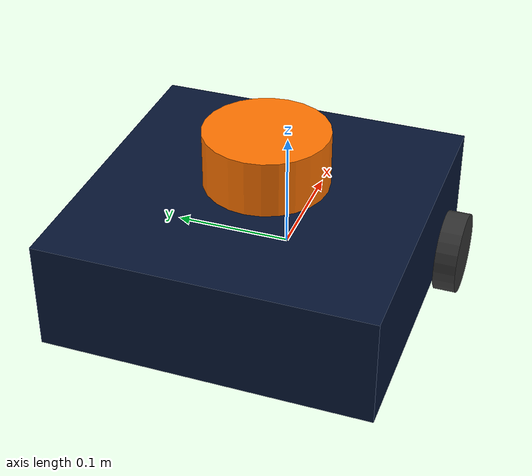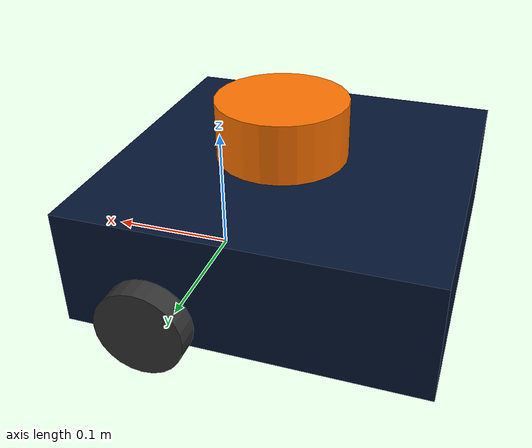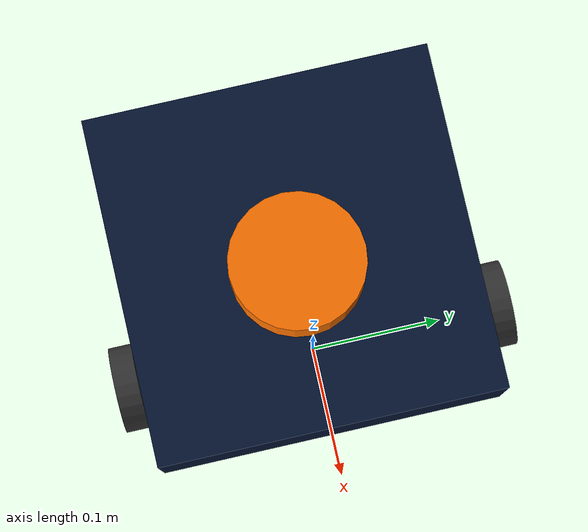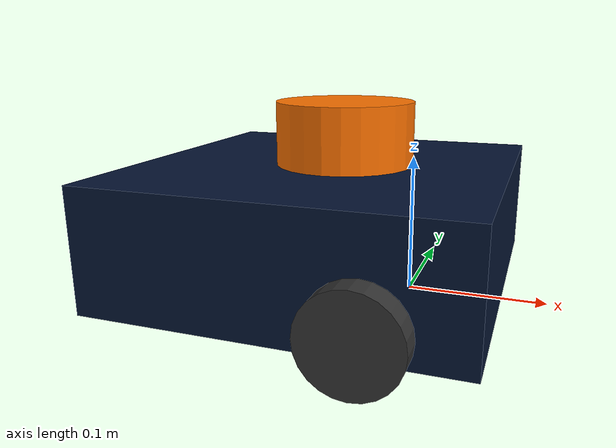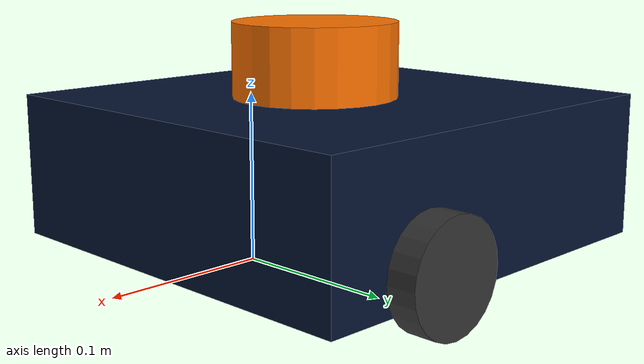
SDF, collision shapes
<?xml version="1.0" ?>
<sdf version="1.8">
  <model name="turtlebot3_waffle">
  <pose>0.0 0.0 0.0 0.0 0.0 0.0</pose>

    <link name="base_footprint"/>

    <link name="base_link">

      <inertial>
        <pose>-0.064 0 0.048 0 0 0</pose>
        <inertia>
          <ixx>4.2111447e-02</ixx>
          <ixy>0</ixy>
          <ixz>0</ixz>
          <iyy>4.2111447e-02</iyy>
          <iyz>0</iyz>
          <izz>7.5254874e-02</izz>
        </inertia>
        <mass>1.3729096e+00</mass>
      </inertial>

      <collision name="base_collision">
        <pose>-0.064 0 0.048 0 0 0</pose>
        <geometry>
          <box>
            <size>0.265 0.265 0.089</size>
          </box>
        </geometry>
      </collision>

      <visual name="base_visual">
        <pose>-0.064 0 0 0 0 0</pose>
        <geometry>
          <mesh>
            <uri>model://turtlebot3_common/meshes/bases/waffle_base.stl</uri>
            <scale>0.001 0.001 0.001</scale>
          </mesh>
        </geometry>
        <material>
          <ambient>0.02 0.05 0.12 1.0</ambient>
          <diffuse>0.02 0.08 0.20 1.0</diffuse>
          <specular>0.1 0.1 0.1 1.0</specular>
        </material>
      </visual>
    </link>

    <link name="imu_link">
      <sensor name="tb3_imu" type="imu">
        <always_on>true</always_on>
        <update_rate>50</update_rate>
        <topic>robot1/imu</topic>
        <imu>
          <angular_velocity>
            <x>
              <noise type="gaussian">
                <mean>0.0</mean>
                <stddev>2e-4</stddev>
              </noise>
            </x>
            <y>
              <noise type="gaussian">
                <mean>0.0</mean>
                <stddev>2e-4</stddev>
              </noise>
            </y>
            <z>
              <noise type="gaussian">
                <mean>0.0</mean>
                <stddev>2e-4</stddev>
              </noise>
            </z>
          </angular_velocity>
          <linear_acceleration>
            <x>
              <noise type="gaussian">
                <mean>0.0</mean>
                <stddev>1.7e-2</stddev>
              </noise>
            </x>
            <y>
              <noise type="gaussian">
                <mean>0.0</mean>
                <stddev>1.7e-2</stddev>
              </noise>
            </y>
            <z>
              <noise type="gaussian">
                <mean>0.0</mean>
                <stddev>1.7e-2</stddev>
              </noise>
            </z>
          </linear_acceleration>
        </imu>
      </sensor>
    </link>

    <link name="base_scan">
      <inertial>
        <pose>-0.052 0 0.111 0 0 0</pose>
        <inertia>
          <ixx>0.001</ixx>
          <ixy>0.000</ixy>
          <ixz>0.000</ixz>
          <iyy>0.001</iyy>
          <iyz>0.000</iyz>
          <izz>0.001</izz>
        </inertia>
        <mass>0.114</mass>
      </inertial>

      <collision name="lidar_sensor_collision">
        <pose>-0.052 0 0.111 0 0 0</pose>
        <geometry>
          <cylinder>
            <radius>0.0508</radius>
            <length>0.055</length>
          </cylinder>
        </geometry>
      </collision>

      <visual name="lidar_sensor_visual">
        <pose>-0.064 0 0.121 0 0 0</pose>
        <geometry>
          <mesh>
            <uri>model://turtlebot3_common/meshes/sensors/lds.stl</uri>
            <scale>0.001 0.001 0.001</scale>
          </mesh>
        </geometry>
        <material>
          <ambient>1.0 0.35 0.0 1.0</ambient>
          <diffuse>1.0 0.45 0.0 1.0</diffuse>
          <specular>0.25 0.20 0.15 1.0</specular>
        </material>
      </visual>

      <sensor name="hls_lfcd_lds" type="gpu_lidar">
        <always_on>true</always_on>
        <visualize>true</visualize>
        <pose>-0.064 0 0.121 0 0 0</pose>
        <update_rate>10</update_rate>
        <topic>robot1/scan</topic>
        <gz_frame_id>robot1/base_scan</gz_frame_id>
        <lidar>
          <scan>
            <horizontal>
              <samples>360</samples>
              <resolution>1.000000</resolution>
              <min_angle>0.000000</min_angle>
              <max_angle>6.280000</max_angle>
            </horizontal>
          </scan>
          <range>
            <min>0.120000</min>
            <max>20.0</max>
            <resolution>0.015000</resolution>
          </range>
          <noise>
            <type>gaussian</type>
            <mean>0.0</mean>
            <stddev>0.01</stddev>
          </noise>
        </lidar>
      </sensor>
    </link>

    <link name="wheel_left_link">

      <inertial>
        <pose>0.0 0.144 0.023 -1.57 0 0</pose>
        <inertia>
          <ixx>1.1175580e-05</ixx>
          <ixy>-4.2369783e-11</ixy>
          <ixz>-5.9381719e-09</ixz>
          <iyy>1.1192413e-05</iyy>
          <iyz>-1.4400107e-11</iyz>
          <izz>2.0712558e-05</izz>
        </inertia>
        <mass>0.1</mass>
      </inertial>

      <collision name="wheel_left_collision">
        <pose>0.0 0.144 0.023 -1.57 0 0</pose>
        <geometry>
          <cylinder>
            <radius>0.033</radius>
            <length>0.018</length>
          </cylinder>
        </geometry>
        <surface>
          <!-- This friction pamareter don't contain reliable data!! -->
          <friction>
            <ode>
              <mu>1.0</mu>
              <mu2>0.5</mu2>
              <fdir1>0 0 0</fdir1>
              <slip1>0.0</slip1>
              <slip2>0.0</slip2>
            </ode>
          </friction>
          <contact>
            <ode>
              <soft_cfm>0</soft_cfm>
              <soft_erp>0.2</soft_erp>
              <kp>1e+5</kp>
              <kd>1</kd>
              <max_vel>0.01</max_vel>
              <min_depth>0.001</min_depth>
            </ode>
          </contact>
        </surface>
      </collision>

      <visual name="wheel_left_visual">
        <pose>0.0 0.144 0.023 0 0 0</pose>
        <geometry>
          <mesh>
            <uri>model://turtlebot3_common/meshes/wheels/left_tire.stl</uri>
            <scale>0.001 0.001 0.001</scale>
          </mesh>
        </geometry>
        <material>
          <ambient>0.2 0.2 0.2 1.0</ambient>
          <diffuse>0.2 0.2 0.2 1.0</diffuse>
        </material>
      </visual>
    </link>

    <link name="wheel_right_link">

      <inertial>
        <pose>0.0 -0.144 0.023 -1.57 0 0</pose>
        <inertia>
          <ixx>1.1175580e-05</ixx>
          <ixy>-4.2369783e-11</ixy>
          <ixz>-5.9381719e-09</ixz>
          <iyy>1.1192413e-05</iyy>
          <iyz>-1.4400107e-11</iyz>
          <izz>2.0712558e-05</izz>
        </inertia>
        <mass>0.1</mass>
      </inertial>

      <collision name="wheel_right_collision">
        <pose>0.0 -0.144 0.023 -1.57 0 0</pose>
        <geometry>
          <cylinder>
            <radius>0.033</radius>
            <length>0.018</length>
          </cylinder>
        </geometry>
        <surface>
          <!-- This friction pamareter don't contain reliable data!! -->
          <friction>
            <ode>
              <mu>1.0</mu>
              <mu2>0.5</mu2>
              <fdir1>0 0 0</fdir1>
              <slip1>0.0</slip1>
              <slip2>0.0</slip2>
            </ode>
          </friction>
          <contact>
            <ode>
              <soft_cfm>0</soft_cfm>
              <soft_erp>0.2</soft_erp>
              <kp>1e+5</kp>
              <kd>1</kd>
              <max_vel>0.01</max_vel>
              <min_depth>0.001</min_depth>
            </ode>
          </contact>
        </surface>
      </collision>

      <visual name="wheel_right_visual">
        <pose>0.0 -0.144 0.023 0 0 0</pose>
        <geometry>
          <mesh>
            <uri>model://turtlebot3_common/meshes/wheels/right_tire.stl</uri>
            <scale>0.001 0.001 0.001</scale>
          </mesh>
        </geometry>
        <material>
          <ambient>0.2 0.2 0.2 1.0</ambient>
          <diffuse>0.2 0.2 0.2 1.0</diffuse>
        </material>
      </visual>
    </link>

    <link name='caster_back_right_link'>
      <pose>-0.177 -0.064 -0.005 -1.57 0 0</pose>
      <inertial>
        <mass>0.001</mass>
        <inertia>
          <ixx>0.00001</ixx>
          <ixy>0.000</ixy>
          <ixz>0.000</ixz>
          <iyy>0.00001</iyy>
          <iyz>0.000</iyz>
          <izz>0.00001</izz>
        </inertia>
      </inertial>
      <collision name='collision'>
        <geometry>
          <sphere>
            <radius>0.005000</radius>
          </sphere>
        </geometry>
        <surface>
          <friction>
            <ode>
              <mu>0.0</mu>
              <mu2>0.0</mu2>
              <fdir1>0 0 0</fdir1>
              <slip1>0.0</slip1>
              <slip2>0.0</slip2>
            </ode>
          </friction>
          <contact>
            <ode>
              <soft_cfm>0</soft_cfm>
              <soft_erp>0.2</soft_erp>
              <kp>1e+5</kp>
              <kd>1</kd>
              <max_vel>0.01</max_vel>
              <min_depth>0.001</min_depth>
            </ode>
          </contact>
        </surface>
      </collision>
    </link>

    <link name='caster_back_left_link'>
      <pose>-0.177 0.064 -0.005 -1.57 0 0</pose>
      <inertial>
        <mass>0.001</mass>
        <inertia>
          <ixx>0.00001</ixx>
          <ixy>0.000</ixy>
          <ixz>0.000</ixz>
          <iyy>0.00001</iyy>
          <iyz>0.000</iyz>
          <izz>0.00001</izz>
        </inertia>
      </inertial>
      <collision name='collision'>
        <geometry>
          <sphere>
            <radius>0.005000</radius>
          </sphere>
        </geometry>
        <surface>
          <friction>
            <ode>
              <mu>0.0</mu>
              <mu2>0.0</mu2>
              <fdir1>0 0 0</fdir1>
              <slip1>0.0</slip1>
              <slip2>0.0</slip2>
            </ode>
          </friction>
          <contact>
            <ode>
              <soft_cfm>0</soft_cfm>
              <soft_erp>0.2</soft_erp>
              <kp>1e+5</kp>
              <kd>1</kd>
              <max_vel>0.01</max_vel>
              <min_depth>0.001</min_depth>
            </ode>
          </contact>
        </surface>
      </collision>
    </link>

    <link name="camera_link"/>

    <link name="camera_rgb_frame">
      <inertial>
        <pose>0.069 -0.047 0.107 0 0 0</pose>
        <inertia>
          <ixx>0.001</ixx>
          <ixy>0.000</ixy>
          <ixz>0.000</ixz>
          <iyy>0.001</iyy>
          <iyz>0.000</iyz>
          <izz>0.001</izz>
        </inertia>
        <mass>0.035</mass>
      </inertial>

      <pose>0.069 -0.047 0.107 0 0 0</pose>
      <sensor name="camera" type="camera">
        <always_on>true</always_on>
        <visualize>true</visualize>
        <update_rate>30</update_rate>
        <topic>camera/image_raw</topic>
        <gz_frame_id>camera_rgb_frame</gz_frame_id>
        <camera name="intel_realsense_r200">
          <camera_info_topic>camera/camera_info</camera_info_topic>
          <horizontal_fov>1.02974</horizontal_fov>
          <image>
            <width>1920</width>
            <height>1080</height>
            <format>R8G8B8</format>
          </image>
          <clip>
            <near>0.02</near>
            <far>300</far>
          </clip>
          <noise>
            <type>gaussian</type>
            <mean>0.0</mean>
            <stddev>0.007</stddev>
          </noise>
        </camera>
      </sensor>
    </link>

    <joint name="base_joint" type="fixed">
      <parent>base_footprint</parent>
      <child>base_link</child>
      <pose>0.0 0.0 0.010 0 0 0</pose>
    </joint>

    <joint name="wheel_left_joint" type="revolute">
      <parent>base_link</parent>
      <child>wheel_left_link</child>
      <pose>0.0 0.144 0.023 -1.57 0 0</pose>
      <axis>
        <xyz>0 0 1</xyz>
        <limit>
          <effort>20</effort>
        </limit>
      </axis>
    </joint>

    <joint name="wheel_right_joint" type="revolute">
      <parent>base_link</parent>
      <child>wheel_right_link</child>
      <pose>0.0 -0.144 0.023 -1.57 0 0</pose>
      <axis>
        <xyz>0 0 1</xyz>
        <limit>
          <effort>20</effort>
        </limit>
      </axis>
    </joint>

    <joint name='caster_back_right_joint' type='ball'>
      <parent>base_link</parent>
      <child>caster_back_right_link</child>
    </joint>

    <joint name='caster_back_left_joint' type='ball'>
      <parent>base_link</parent>
      <child>caster_back_left_link</child>
    </joint>

    <joint name="imu_joint" type="fixed">
      <parent>base_link</parent>
      <child>imu_link</child>
      <pose>-0.032 0 0.068 0 0 0</pose>
      <axis>
        <xyz>0 0 1</xyz>
      </axis>
    </joint>

    <joint name="lidar_joint" type="fixed">
      <parent>base_link</parent>
      <child>base_scan</child>
      <pose>-0.064 0 0.121 0 0 0</pose>
      <axis>
        <xyz>0 0 1</xyz>
      </axis>
    </joint>

    <joint name="camera_joint" type="fixed">
      <parent>base_link</parent>
      <child>camera_link</child>
      <pose>0.064 -0.065 0.094 0 0 0</pose>
      <axis>
        <xyz>0 0 1</xyz>
      </axis>
    </joint>

    <joint name="camera_rgb_joint" type="fixed">
      <parent>camera_link</parent>
      <child>camera_rgb_frame</child>
      <pose>0.005 0.018 0.013 0 0 0</pose>
      <axis>
        <xyz>0 0 1</xyz>
      </axis>
    </joint>

    <plugin filename="gz-sim-diff-drive-system" name="gz::sim::systems::DiffDrive">

      <!-- wheels -->
      <left_joint>wheel_left_joint</left_joint>
      <right_joint>wheel_right_joint</right_joint>

      <!-- Match the calibrated generic model to reduce yaw over-rotation drift. -->
      <wheel_separation>0.287</wheel_separation>
      <wheel_radius>0.033</wheel_radius>

      <!-- limits -->
      <max_linear_acceleration>1.0</max_linear_acceleration>

      <topic>robot1/cmd_vel</topic>

      <odom_topic>robot1/odom</odom_topic>
      <frame_id>robot1/odom</frame_id>
      <child_frame_id>robot1/base_footprint</child_frame_id>
      <odom_publisher_frequency>50</odom_publisher_frequency>
      <publish_odom_tf>false</publish_odom_tf>

      <tf_topic>/robot1/tf</tf_topic>

    </plugin>

    <plugin filename="gz-sim-joint-state-publisher-system" name="gz::sim::systems::JointStatePublisher">
      <topic>robot1/joint_states</topic>
      <joint_name>wheel_left_joint</joint_name>
      <joint_name>wheel_right_joint</joint_name>
    </plugin>

  </model>
</sdf>
